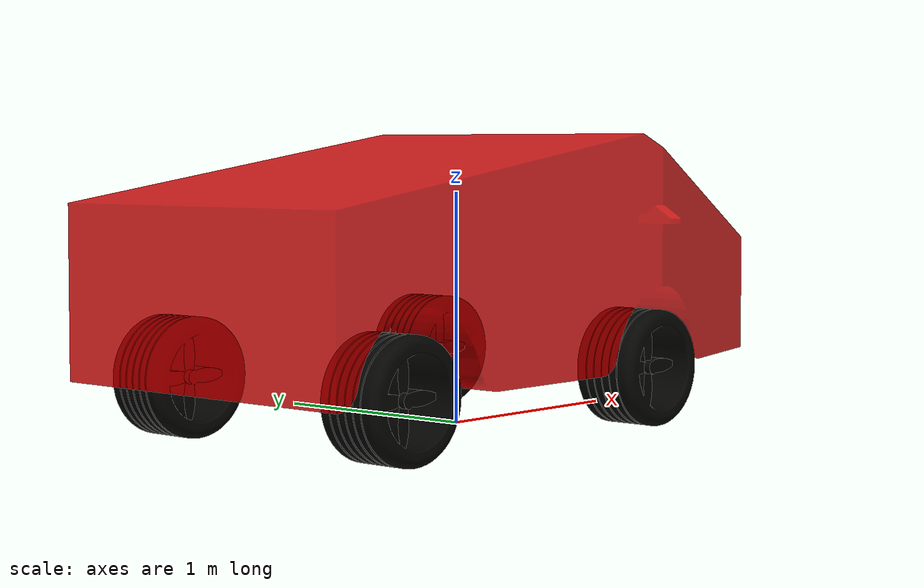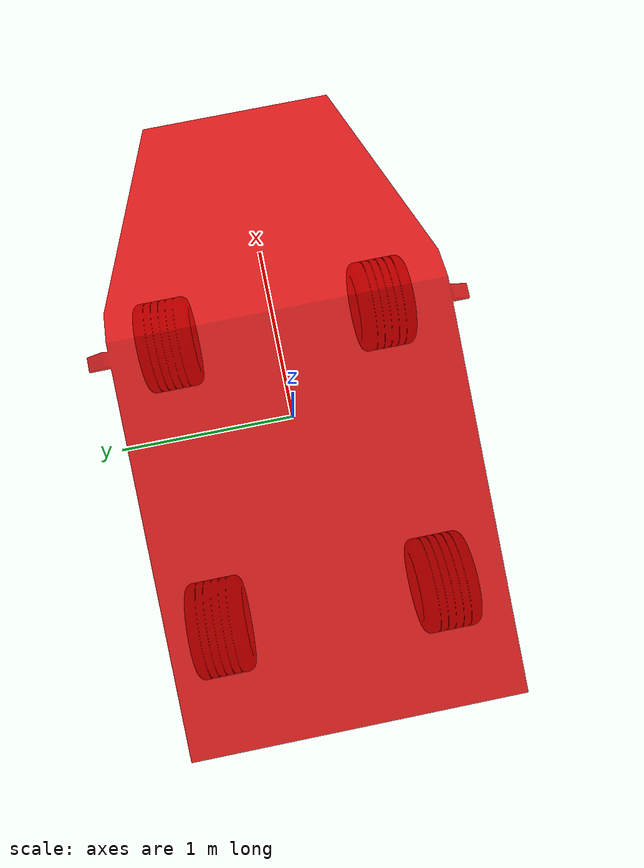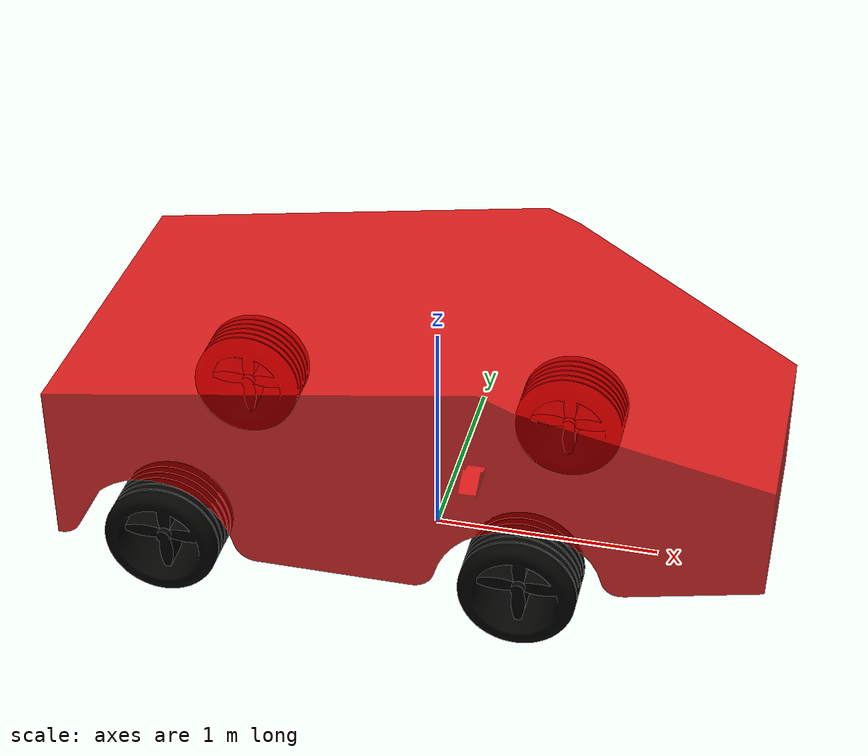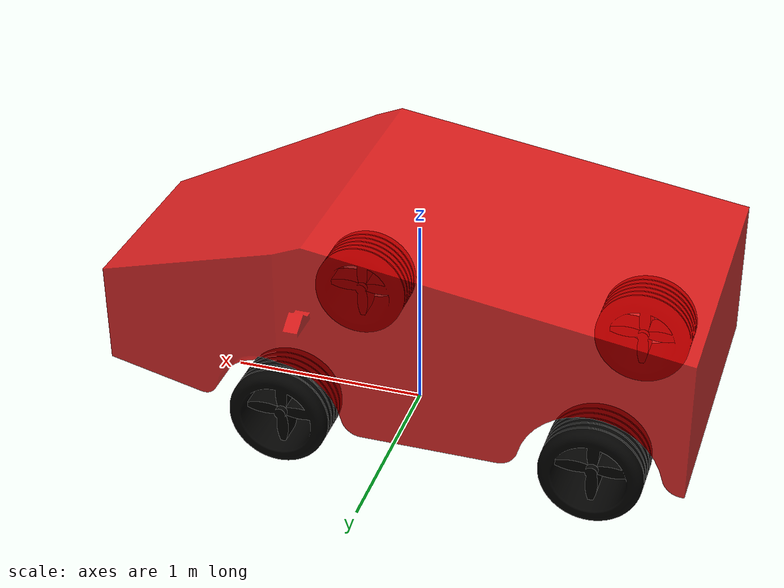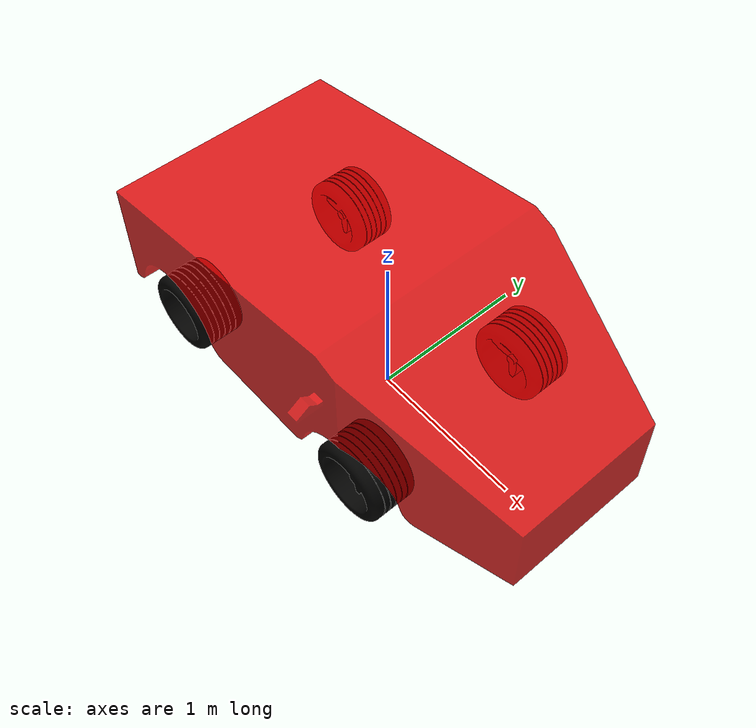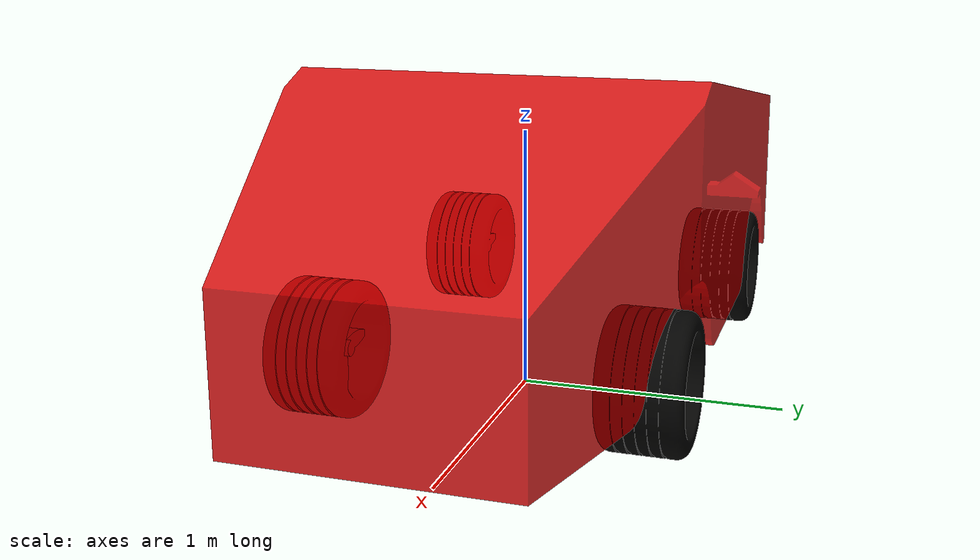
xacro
<?xml version="1.0"?>

<robot xmlns:xacro="http://www.ros.org/wiki/xacro"  name="car">

    <xacro:arg name="is_ignition" default="true"/>
    <!--include Gazebo parameters -->
    <xacro:include filename="$(find car_description)/urdf/car_gazebo.xacro"/>

     <!--include ros control parameters -->
    <xacro:include filename="$(find car_description)/urdf/car_ros2_control.xacro"/>

    <link name="base_footprint"/>

    <link name="base_link">
    <inertial>
        <origin
            xyz="0.0 0 -0.15"
            rpy="1.5708 0.0 -1.5708" />
        <mass
            value="1500" />
        <inertia
            ixx="1250"
            ixy="0"
            ixz="0"
            iyy="1400"
            iyz="0"
            izz="500" />
        </inertial>
        <visual>
            <origin rpy="1.57 0 -1.57" xyz= "1.5 0.917885 -0.5"/>
            <geometry>
                <mesh filename="package://car_description/meshes/ego_cyber.STL"/>
            </geometry>
            <material name="red">
                <color rgba="0.863 0.0 0.0 0.85"/>
            </material>
        </visual>
        <collision>
            <origin rpy="1.57 0 -1.57" xyz= "1.5 0.917885 -0.5"/>
            <geometry>
                <mesh filename="package://car_description/meshes/ego_cyber.STL"/>
            </geometry>
        </collision>

    </link>

    <joint name="base_joint" type="fixed">
     <parent link="base_footprint"/>
     <child link="base_link"/>
     <origin xyz="0.0 0.0 0.75" rpy="0.0 0.0 0.0"/>

    </joint>

    <link name="steering_link_fr">
        <inertial>
            <origin
                xyz="0 0 0"
                rpy="0 0 0" />
            <mass
                value="0.001" />
            <inertia
                ixx="0.1"
                ixy="0.0"
                ixz="0.0"
                iyy="0.1"
                iyz="0.0"
                izz="0.1" />
        </inertial>
    </link>
    <joint name="steering_joint_fr" type="continuous">
        <parent link="base_link"/>
        <child link="steering_link_fr"/>
        <axis xyz="0.0 0.0 1.0"/>
        <origin xyz="0.5 -0.6 -0.5" rpy="0.0 0.0 0.0"/>

    </joint>

    <link name="FR_wheel">
        <inertial>
        <origin
            xyz="0 0 0"
            rpy="1.5708 0.0 -1.5708" />
        <mass
            value="20" />
        <inertia
            ixx="0.2"
            ixy="0.0"
            ixz="0.0"
            iyy="0.4"
            iyz="0.0"
            izz="0.4" />
        </inertial>
        <visual>
            <origin xyz="-0.25 -0.15 -0.25" rpy="0.0  0.0 0"/>
            <geometry>
                <mesh filename="package://car_description/meshes/wheel.STL"/>
            </geometry>
            <material name="black">
                <color rgba="0.012 0.012 0.008 1"/>
            </material>
        </visual>
        <collision>
            <origin xyz="0 0 0" rpy="0.0  0.0 0"/>
            <geometry>
                <sphere radius="0.25"/>
            </geometry>
        </collision>

    </link>

    <joint name="FR_wheel_joint" type="continuous">
        <parent link="steering_link_fr"/>
        <child link="FR_wheel"/>
        <axis xyz="0.0 1.0 0.0"/>
        <origin xyz="0.0 0.0 0.0" rpy="0.0 0.0 0.0"/>

    </joint>

    <link name="steering_link_fl">
        <inertial>
            <origin
                xyz="0 0 0"
                rpy="0 0 0" />
            <mass
                value="0.001" />
            <inertia
                ixx="0.1"
                ixy="0.0"
                ixz="0.0"
                iyy="0.1"
                iyz="0.0"
                izz="0.1" />
        </inertial>
    </link>
    <joint name="steering_joint_fl" type="continuous">
        <parent link="base_link"/>
        <child link="steering_link_fl"/>
        <axis xyz="0.0 0.0 1.0"/>
        <origin xyz="0.5 0.6 -0.5" rpy="0.0 0.0 0.0"/>

    </joint>

    <link name="FL_wheel">
        <inertial>
            <origin
                xyz="0 0 0"
                rpy="1.5708 0.0 -1.5708" />
            <mass
                value="20" />
            <inertia
            ixx="0.2"
            ixy="0.0"
            ixz="0.0"
            iyy="0.4"
            iyz="0.0"
            izz="0.4" />
        </inertial>
        <visual>
            <origin xyz="-0.25 -0.15 -0.25" rpy="0.0  0.0 0"/>
            <geometry>
                <mesh filename="package://car_description/meshes/wheel.STL"/>
            </geometry>
            <material name="black">
                <color rgba="0.012 0.012 0.008 1"/>
            </material>
        </visual>
        <collision>
            <origin xyz="0 0 0" rpy="0.0  0.0 0"/>
            <geometry>
                <sphere radius="0.25"/>
            </geometry>
        </collision>

    </link>

    <joint name="FL_wheel_joint" type="continuous">
        <parent link="steering_link_fl"/>
        <child link="FL_wheel"/>
        <axis xyz="0.0 1.0 0.0"/>
        <origin xyz="0.0 0.0 0.0" rpy="0.0 0.0 0.0"/>

    </joint>

    <link name="RR_wheel">
        <inertial>
            <origin
                xyz="0 0 0"
                rpy="1.5708 0.0 -1.5708" />
            <mass
                value="20" />
             <inertia
            ixx="0.2"
            ixy="0.0"
            ixz="0.0"
            iyy="0.4"
            iyz="0.0"
            izz="0.4" />
        </inertial>
        <visual>
            <origin xyz="-0.25 -0.15 -0.25" rpy="0.0  0.0 0"/>
            <geometry>
                <mesh filename="package://car_description/meshes/wheel.STL"/>
            </geometry>
            <material name="black">
                <color rgba="0.012 0.012 0.008 1"/>
            </material>
        </visual>
        <collision>
            <origin xyz="0 0 0" rpy="0.0  0.0 0"/>
            <geometry>
                <sphere radius="0.25"/>
            </geometry>
        </collision>

    </link>

    <joint name="RR_wheel_joint" type="continuous">
        <parent link="base_link"/>
        <child link="RR_wheel"/>
        <axis xyz="0.0 1.0 0.0"/>
        <origin xyz="-1.05 -0.6 -0.5" rpy="0.0 0.0 0.0"/>

    </joint>

    <transmission name="RR_wheel_trans">
        <type>transmission_interface/SimpleTransmission</type>
        <joint name="RR_wheel_joint">
            <hardwareInterface>VelocityJointInterface</hardwareInterface>
        </joint>
        <actuator name="RR_wheel_motor">
            <hardwareInterface>VelocityJointInterface</hardwareInterface>
            <mechanicalReduction>1</mechanicalReduction>
        </actuator>
    </transmission>

    <link name="RL_wheel">
        <inertial>
            <origin
                xyz="0 0 0"
                rpy="1.5708 0.0 -1.5708" />
            <mass
                value="20" />
             <inertia
            ixx="0.2"
            ixy="0.0"
            ixz="0.0"
            iyy="0.4"
            iyz="0.0"
            izz="0.4" />
        </inertial>
        <visual>
            <origin xyz="-0.25 -0.15 -0.25" rpy="0.0  0.0 0"/>
            <geometry>
                <mesh filename="package://car_description/meshes/wheel.STL"/>
            </geometry>
            <material name="black">
                <color rgba="0.012 0.012 0.008 1"/>
            </material>
        </visual>
        <collision>
            <origin xyz="0 0 0" rpy="0.0  0.0 0"/>
            <geometry>
                <sphere radius="0.25"/>
            </geometry>
        </collision>

    </link>

    <joint name="RL_wheel_joint" type="continuous">
        <parent link="base_link"/>
        <child link="RL_wheel"/>
        <axis xyz="0.0 1.0 0.0"/>
        <origin xyz="-1.05 0.6 -0.5" rpy="0.0 0.0 0.0"/>

    </joint>

    <transmission name="RL_wheel_trans">
        <type>transmission_interface/SimpleTransmission</type>
        <joint name="RL_wheel_joint">
            <hardwareInterface>VelocityJointInterface</hardwareInterface>
        </joint>
        <actuator name="RL_wheel_motor">
            <hardwareInterface>VelocityJointInterface</hardwareInterface>
            <mechanicalReduction>1</mechanicalReduction>
        </actuator>
    </transmission>

    <link name="ack_fr">
        <inertial>
            <origin
                xyz="0 0 0"
                rpy="0 0 0" />
            <mass
                value="0.001" />
            <inertia
                ixx="0.1"
                ixy="0.0"
                ixz="0.0"
                iyy="0.1"
                iyz="0.0"
                izz="0.1" />
        </inertial>
    </link>
    <joint name="ack_fr_joint" type="continuous">
        <parent link="base_link"/>
        <child link="ack_fr"/>
        <axis xyz="0.0 1.0 0.0"/>
        <origin xyz="0.5 -0.6 -0.5" rpy="0.0 0.0 0.0"/>

    </joint>

    <transmission name="ack_fr_trans">
        <type>transmission_interface/SimpleTransmission</type>
        <joint name="ack_fr_joint">
            <hardwareInterface>VelocityJointInterface</hardwareInterface>
        </joint>
        <actuator name="FR_wheel_motor">
            <hardwareInterface>VelocityJointInterface</hardwareInterface>
            <mechanicalReduction>1</mechanicalReduction>
        </actuator>
    </transmission>

    <link name="ack_fl">
        <inertial>
            <origin
                xyz="0 0 0"
                rpy="0 0 0" />
            <mass
                value="0.001" />
            <inertia
                ixx="0.1"
                ixy="0.0"
                ixz="0.0"
                iyy="0.1"
                iyz="0.0"
                izz="0.1" />
        </inertial>
    </link>
    <joint name="ack_fl_joint" type="continuous">
        <parent link="base_link"/>
        <child link="ack_fl"/>
        <axis xyz="0.0 1.0 0.0"/>
        <origin xyz="0.5 0.6 -0.5" rpy="0.0 0.0 0.0"/>

    </joint>

    <transmission name="ack_fl_trans">
        <type>transmission_interface/SimpleTransmission</type>
        <joint name="ack_fl_joint">
            <hardwareInterface>VelocityJointInterface</hardwareInterface>
        </joint>
        <actuator name="FL_wheel_motor">
            <hardwareInterface>VelocityJointInterface</hardwareInterface>
            <mechanicalReduction>1</mechanicalReduction>
        </actuator>
    </transmission>

</robot>
